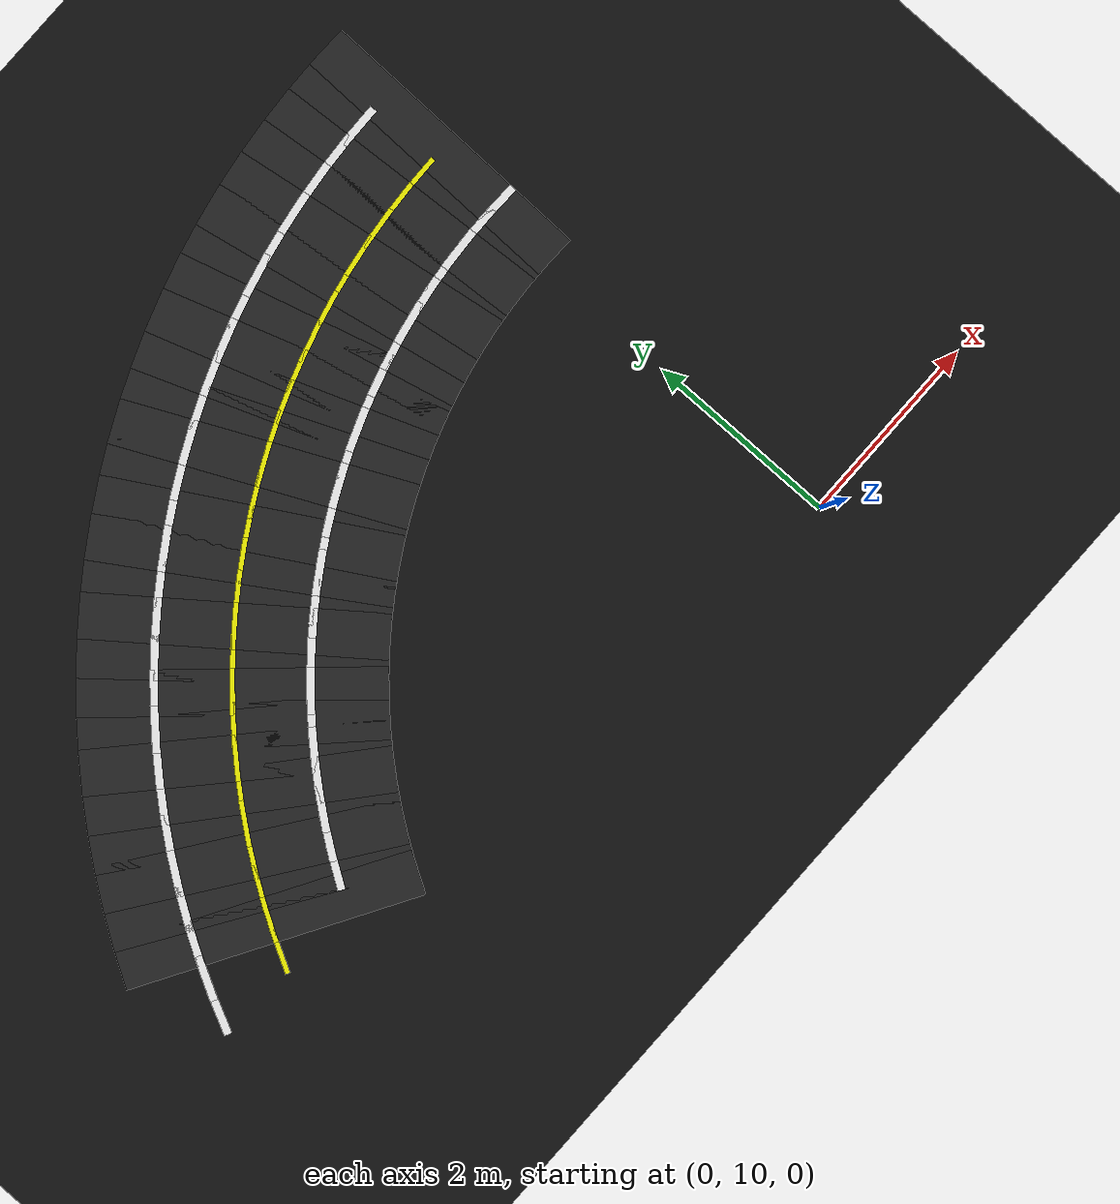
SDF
<sdf version="1.6">
 <world name="figure8_world">
  <model name="ground_plane">
   <static>true</static>
   <link name="link">
    <collision name="collision">
     <geometry><plane><normal>0 0 1</normal><size>100 100</size></plane></geometry>
    </collision>
    <visual name="visual">
     <geometry><plane><normal>0 0 1</normal><size>100 100</size></plane></geometry>
     <material><ambient>0.08 0.08 0.08 1</ambient><diffuse>0.08 0.08 0.08 1</diffuse></material>
    </visual>
   </link>
  </model>
  <model name="seg_00272">
   <static>true</static>
   <pose>0.1581 14.9983 0.0010 0 0 3.1205</pose>
   <link name="link">
    <collision name="collision"><geometry><box><size>0.4500 3.0000 0.002</size></box></geometry></collision>
    <visual name="visual">
     <geometry><box><size>0.4500 3.0000 0.002</size></box></geometry>
     <material><ambient>0.15 0.15 0.15 1</ambient><diffuse>0.15 0.15 0.15 1</diffuse></material>
    </visual>
   </link>
  </model>
  <model name="seg_00274">
   <static>true</static>
   <pose>0.1423 14.2485 0.0030 0 0 3.1205</pose>
   <link name="link">
    <collision name="collision"><geometry><box><size>0.4500 0.0800 0.002</size></box></geometry></collision>
    <visual name="visual">
     <geometry><box><size>0.4500 0.0800 0.002</size></box></geometry>
     <material><ambient>1 1 1 1</ambient><diffuse>1 1 1 1</diffuse></material>
    </visual>
   </link>
  </model>
  <model name="seg_00276">
   <static>true</static>
   <pose>-0.1581 14.9983 0.0010 0 0 3.1627</pose>
   <link name="link">
    <collision name="collision"><geometry><box><size>0.4500 3.0000 0.002</size></box></geometry></collision>
    <visual name="visual">
     <geometry><box><size>0.4500 3.0000 0.002</size></box></geometry>
     <material><ambient>0.15 0.15 0.15 1</ambient><diffuse>0.15 0.15 0.15 1</diffuse></material>
    </visual>
   </link>
  </model>
  <model name="seg_00277">
   <static>true</static>
   <pose>-0.1739 15.7482 0.0030 0 0 3.1627</pose>
   <link name="link">
    <collision name="collision"><geometry><box><size>0.4500 0.0800 0.002</size></box></geometry></collision>
    <visual name="visual">
     <geometry><box><size>0.4500 0.0800 0.002</size></box></geometry>
     <material><ambient>1 1 1 1</ambient><diffuse>1 1 1 1</diffuse></material>
    </visual>
   </link>
  </model>
  <model name="seg_00278">
   <static>true</static>
   <pose>-0.1423 14.2485 0.0030 0 0 3.1627</pose>
   <link name="link">
    <collision name="collision"><geometry><box><size>0.4500 0.0800 0.002</size></box></geometry></collision>
    <visual name="visual">
     <geometry><box><size>0.4500 0.0800 0.002</size></box></geometry>
     <material><ambient>1 1 1 1</ambient><diffuse>1 1 1 1</diffuse></material>
    </visual>
   </link>
  </model>
  <model name="seg_00279">
   <static>true</static>
   <pose>-0.1581 14.9983 0.0030 0 0 3.1627</pose>
   <link name="link">
    <collision name="collision"><geometry><box><size>0.4500 0.0500 0.002</size></box></geometry></collision>
    <visual name="visual">
     <geometry><box><size>0.4500 0.0500 0.002</size></box></geometry>
     <material><ambient>1 1 0 1</ambient><diffuse>1 1 0 1</diffuse></material>
    </visual>
   </link>
  </model>
  <model name="seg_00280">
   <static>true</static>
   <pose>-0.4741 14.9850 0.0010 0 0 3.2048</pose>
   <link name="link">
    <collision name="collision"><geometry><box><size>0.4500 3.0000 0.002</size></box></geometry></collision>
    <visual name="visual">
     <geometry><box><size>0.4500 3.0000 0.002</size></box></geometry>
     <material><ambient>0.15 0.15 0.15 1</ambient><diffuse>0.15 0.15 0.15 1</diffuse></material>
    </visual>
   </link>
  </model>
  <model name="seg_00281">
   <static>true</static>
   <pose>-0.5215 15.7335 0.0030 0 0 3.2048</pose>
   <link name="link">
    <collision name="collision"><geometry><box><size>0.4500 0.0800 0.002</size></box></geometry></collision>
    <visual name="visual">
     <geometry><box><size>0.4500 0.0800 0.002</size></box></geometry>
     <material><ambient>1 1 1 1</ambient><diffuse>1 1 1 1</diffuse></material>
    </visual>
   </link>
  </model>
  <model name="seg_00282">
   <static>true</static>
   <pose>-0.4267 14.2365 0.0030 0 0 3.2048</pose>
   <link name="link">
    <collision name="collision"><geometry><box><size>0.4500 0.0800 0.002</size></box></geometry></collision>
    <visual name="visual">
     <geometry><box><size>0.4500 0.0800 0.002</size></box></geometry>
     <material><ambient>1 1 1 1</ambient><diffuse>1 1 1 1</diffuse></material>
    </visual>
   </link>
  </model>
  <model name="seg_00283">
   <static>true</static>
   <pose>-0.4741 14.9850 0.0030 0 0 3.2048</pose>
   <link name="link">
    <collision name="collision"><geometry><box><size>0.4500 0.0500 0.002</size></box></geometry></collision>
    <visual name="visual">
     <geometry><box><size>0.4500 0.0500 0.002</size></box></geometry>
     <material><ambient>1 1 0 1</ambient><diffuse>1 1 0 1</diffuse></material>
    </visual>
   </link>
  </model>
  <model name="seg_00284">
   <static>true</static>
   <pose>-0.7892 14.9584 0.0010 0 0 3.2470</pose>
   <link name="link">
    <collision name="collision"><geometry><box><size>0.4500 3.0000 0.002</size></box></geometry></collision>
    <visual name="visual">
     <geometry><box><size>0.4500 3.0000 0.002</size></box></geometry>
     <material><ambient>0.15 0.15 0.15 1</ambient><diffuse>0.15 0.15 0.15 1</diffuse></material>
    </visual>
   </link>
  </model>
  <model name="seg_00285">
   <static>true</static>
   <pose>-0.8681 15.7042 0.0030 0 0 3.2470</pose>
   <link name="link">
    <collision name="collision"><geometry><box><size>0.4500 0.0800 0.002</size></box></geometry></collision>
    <visual name="visual">
     <geometry><box><size>0.4500 0.0800 0.002</size></box></geometry>
     <material><ambient>1 1 1 1</ambient><diffuse>1 1 1 1</diffuse></material>
    </visual>
   </link>
  </model>
  <model name="seg_00286">
   <static>true</static>
   <pose>-0.7103 14.2125 0.0030 0 0 3.2470</pose>
   <link name="link">
    <collision name="collision"><geometry><box><size>0.4500 0.0800 0.002</size></box></geometry></collision>
    <visual name="visual">
     <geometry><box><size>0.4500 0.0800 0.002</size></box></geometry>
     <material><ambient>1 1 1 1</ambient><diffuse>1 1 1 1</diffuse></material>
    </visual>
   </link>
  </model>
  <model name="seg_00287">
   <static>true</static>
   <pose>-0.7892 14.9584 0.0030 0 0 3.2470</pose>
   <link name="link">
    <collision name="collision"><geometry><box><size>0.4500 0.0500 0.002</size></box></geometry></collision>
    <visual name="visual">
     <geometry><box><size>0.4500 0.0500 0.002</size></box></geometry>
     <material><ambient>1 1 0 1</ambient><diffuse>1 1 0 1</diffuse></material>
    </visual>
   </link>
  </model>
  <model name="seg_00288">
   <static>true</static>
   <pose>-1.1029 14.9185 0.0010 0 0 3.2892</pose>
   <link name="link">
    <collision name="collision"><geometry><box><size>0.4500 3.0000 0.002</size></box></geometry></collision>
    <visual name="visual">
     <geometry><box><size>0.4500 3.0000 0.002</size></box></geometry>
     <material><ambient>0.15 0.15 0.15 1</ambient><diffuse>0.15 0.15 0.15 1</diffuse></material>
    </visual>
   </link>
  </model>
  <model name="seg_00289">
   <static>true</static>
   <pose>-1.2132 15.6603 0.0030 0 0 3.2892</pose>
   <link name="link">
    <collision name="collision"><geometry><box><size>0.4500 0.0800 0.002</size></box></geometry></collision>
    <visual name="visual">
     <geometry><box><size>0.4500 0.0800 0.002</size></box></geometry>
     <material><ambient>1 1 1 1</ambient><diffuse>1 1 1 1</diffuse></material>
    </visual>
   </link>
  </model>
  <model name="seg_00290">
   <static>true</static>
   <pose>-0.9926 14.1766 0.0030 0 0 3.2892</pose>
   <link name="link">
    <collision name="collision"><geometry><box><size>0.4500 0.0800 0.002</size></box></geometry></collision>
    <visual name="visual">
     <geometry><box><size>0.4500 0.0800 0.002</size></box></geometry>
     <material><ambient>1 1 1 1</ambient><diffuse>1 1 1 1</diffuse></material>
    </visual>
   </link>
  </model>
  <model name="seg_00291">
   <static>true</static>
   <pose>-1.1029 14.9185 0.0030 0 0 3.2892</pose>
   <link name="link">
    <collision name="collision"><geometry><box><size>0.4500 0.0500 0.002</size></box></geometry></collision>
    <visual name="visual">
     <geometry><box><size>0.4500 0.0500 0.002</size></box></geometry>
     <material><ambient>1 1 0 1</ambient><diffuse>1 1 0 1</diffuse></material>
    </visual>
   </link>
  </model>
  <model name="seg_00292">
   <static>true</static>
   <pose>-1.4147 14.8654 0.0010 0 0 3.3314</pose>
   <link name="link">
    <collision name="collision"><geometry><box><size>0.4500 3.0000 0.002</size></box></geometry></collision>
    <visual name="visual">
     <geometry><box><size>0.4500 3.0000 0.002</size></box></geometry>
     <material><ambient>0.15 0.15 0.15 1</ambient><diffuse>0.15 0.15 0.15 1</diffuse></material>
    </visual>
   </link>
  </model>
  <model name="seg_00293">
   <static>true</static>
   <pose>-1.5561 15.6019 0.0030 0 0 3.3314</pose>
   <link name="link">
    <collision name="collision"><geometry><box><size>0.4500 0.0800 0.002</size></box></geometry></collision>
    <visual name="visual">
     <geometry><box><size>0.4500 0.0800 0.002</size></box></geometry>
     <material><ambient>1 1 1 1</ambient><diffuse>1 1 1 1</diffuse></material>
    </visual>
   </link>
  </model>
  <model name="seg_00294">
   <static>true</static>
   <pose>-1.2732 14.1288 0.0030 0 0 3.3314</pose>
   <link name="link">
    <collision name="collision"><geometry><box><size>0.4500 0.0800 0.002</size></box></geometry></collision>
    <visual name="visual">
     <geometry><box><size>0.4500 0.0800 0.002</size></box></geometry>
     <material><ambient>1 1 1 1</ambient><diffuse>1 1 1 1</diffuse></material>
    </visual>
   </link>
  </model>
  <model name="seg_00295">
   <static>true</static>
   <pose>-1.4147 14.8654 0.0030 0 0 3.3314</pose>
   <link name="link">
    <collision name="collision"><geometry><box><size>0.4500 0.0500 0.002</size></box></geometry></collision>
    <visual name="visual">
     <geometry><box><size>0.4500 0.0500 0.002</size></box></geometry>
     <material><ambient>1 1 0 1</ambient><diffuse>1 1 0 1</diffuse></material>
    </visual>
   </link>
  </model>
  <model name="seg_00296">
   <static>true</static>
   <pose>-1.7239 14.7992 0.0010 0 0 3.3735</pose>
   <link name="link">
    <collision name="collision"><geometry><box><size>0.4500 3.0000 0.002</size></box></geometry></collision>
    <visual name="visual">
     <geometry><box><size>0.4500 3.0000 0.002</size></box></geometry>
     <material><ambient>0.15 0.15 0.15 1</ambient><diffuse>0.15 0.15 0.15 1</diffuse></material>
    </visual>
   </link>
  </model>
  <model name="seg_00297">
   <static>true</static>
   <pose>-1.8963 15.5291 0.0030 0 0 3.3735</pose>
   <link name="link">
    <collision name="collision"><geometry><box><size>0.4500 0.0800 0.002</size></box></geometry></collision>
    <visual name="visual">
     <geometry><box><size>0.4500 0.0800 0.002</size></box></geometry>
     <material><ambient>1 1 1 1</ambient><diffuse>1 1 1 1</diffuse></material>
    </visual>
   </link>
  </model>
  <model name="seg_00298">
   <static>true</static>
   <pose>-1.5515 14.0693 0.0030 0 0 3.3735</pose>
   <link name="link">
    <collision name="collision"><geometry><box><size>0.4500 0.0800 0.002</size></box></geometry></collision>
    <visual name="visual">
     <geometry><box><size>0.4500 0.0800 0.002</size></box></geometry>
     <material><ambient>1 1 1 1</ambient><diffuse>1 1 1 1</diffuse></material>
    </visual>
   </link>
  </model>
  <model name="seg_00299">
   <static>true</static>
   <pose>-1.7239 14.7992 0.0030 0 0 3.3735</pose>
   <link name="link">
    <collision name="collision"><geometry><box><size>0.4500 0.0500 0.002</size></box></geometry></collision>
    <visual name="visual">
     <geometry><box><size>0.4500 0.0500 0.002</size></box></geometry>
     <material><ambient>1 1 0 1</ambient><diffuse>1 1 0 1</diffuse></material>
    </visual>
   </link>
  </model>
  <model name="seg_00300">
   <static>true</static>
   <pose>-2.0301 14.7200 0.0010 0 0 3.4157</pose>
   <link name="link">
    <collision name="collision"><geometry><box><size>0.4500 3.0000 0.002</size></box></geometry></collision>
    <visual name="visual">
     <geometry><box><size>0.4500 3.0000 0.002</size></box></geometry>
     <material><ambient>0.15 0.15 0.15 1</ambient><diffuse>0.15 0.15 0.15 1</diffuse></material>
    </visual>
   </link>
  </model>
  <model name="seg_00301">
   <static>true</static>
   <pose>-2.2331 15.4420 0.0030 0 0 3.4157</pose>
   <link name="link">
    <collision name="collision"><geometry><box><size>0.4500 0.0800 0.002</size></box></geometry></collision>
    <visual name="visual">
     <geometry><box><size>0.4500 0.0800 0.002</size></box></geometry>
     <material><ambient>1 1 1 1</ambient><diffuse>1 1 1 1</diffuse></material>
    </visual>
   </link>
  </model>
  <model name="seg_00302">
   <static>true</static>
   <pose>-1.8271 13.9980 0.0030 0 0 3.4157</pose>
   <link name="link">
    <collision name="collision"><geometry><box><size>0.4500 0.0800 0.002</size></box></geometry></collision>
    <visual name="visual">
     <geometry><box><size>0.4500 0.0800 0.002</size></box></geometry>
     <material><ambient>1 1 1 1</ambient><diffuse>1 1 1 1</diffuse></material>
    </visual>
   </link>
  </model>
  <model name="seg_00303">
   <static>true</static>
   <pose>-2.0301 14.7200 0.0030 0 0 3.4157</pose>
   <link name="link">
    <collision name="collision"><geometry><box><size>0.4500 0.0500 0.002</size></box></geometry></collision>
    <visual name="visual">
     <geometry><box><size>0.4500 0.0500 0.002</size></box></geometry>
     <material><ambient>1 1 0 1</ambient><diffuse>1 1 0 1</diffuse></material>
    </visual>
   </link>
  </model>
  <model name="seg_00304">
   <static>true</static>
   <pose>-2.3327 14.6280 0.0010 0 0 3.4579</pose>
   <link name="link">
    <collision name="collision"><geometry><box><size>0.4500 3.0000 0.002</size></box></geometry></collision>
    <visual name="visual">
     <geometry><box><size>0.4500 3.0000 0.002</size></box></geometry>
     <material><ambient>0.15 0.15 0.15 1</ambient><diffuse>0.15 0.15 0.15 1</diffuse></material>
    </visual>
   </link>
  </model>
  <model name="seg_00305">
   <static>true</static>
   <pose>-2.5659 15.3408 0.0030 0 0 3.4579</pose>
   <link name="link">
    <collision name="collision"><geometry><box><size>0.4500 0.0800 0.002</size></box></geometry></collision>
    <visual name="visual">
     <geometry><box><size>0.4500 0.0800 0.002</size></box></geometry>
     <material><ambient>1 1 1 1</ambient><diffuse>1 1 1 1</diffuse></material>
    </visual>
   </link>
  </model>
  <model name="seg_00306">
   <static>true</static>
   <pose>-2.0994 13.9152 0.0030 0 0 3.4579</pose>
   <link name="link">
    <collision name="collision"><geometry><box><size>0.4500 0.0800 0.002</size></box></geometry></collision>
    <visual name="visual">
     <geometry><box><size>0.4500 0.0800 0.002</size></box></geometry>
     <material><ambient>1 1 1 1</ambient><diffuse>1 1 1 1</diffuse></material>
    </visual>
   </link>
  </model>
  <model name="seg_00307">
   <static>true</static>
   <pose>-2.3327 14.6280 0.0030 0 0 3.4579</pose>
   <link name="link">
    <collision name="collision"><geometry><box><size>0.4500 0.0500 0.002</size></box></geometry></collision>
    <visual name="visual">
     <geometry><box><size>0.4500 0.0500 0.002</size></box></geometry>
     <material><ambient>1 1 0 1</ambient><diffuse>1 1 0 1</diffuse></material>
    </visual>
   </link>
  </model>
  <model name="seg_00308">
   <static>true</static>
   <pose>-2.6311 14.5233 0.0010 0 0 3.5000</pose>
   <link name="link">
    <collision name="collision"><geometry><box><size>0.4500 3.0000 0.002</size></box></geometry></collision>
    <visual name="visual">
     <geometry><box><size>0.4500 3.0000 0.002</size></box></geometry>
     <material><ambient>0.15 0.15 0.15 1</ambient><diffuse>0.15 0.15 0.15 1</diffuse></material>
    </visual>
   </link>
  </model>
  <model name="seg_00309">
   <static>true</static>
   <pose>-2.8942 15.2257 0.0030 0 0 3.5000</pose>
   <link name="link">
    <collision name="collision"><geometry><box><size>0.4500 0.0800 0.002</size></box></geometry></collision>
    <visual name="visual">
     <geometry><box><size>0.4500 0.0800 0.002</size></box></geometry>
     <material><ambient>1 1 1 1</ambient><diffuse>1 1 1 1</diffuse></material>
    </visual>
   </link>
  </model>
  <model name="seg_00310">
   <static>true</static>
   <pose>-2.3680 13.8210 0.0030 0 0 3.5000</pose>
   <link name="link">
    <collision name="collision"><geometry><box><size>0.4500 0.0800 0.002</size></box></geometry></collision>
    <visual name="visual">
     <geometry><box><size>0.4500 0.0800 0.002</size></box></geometry>
     <material><ambient>1 1 1 1</ambient><diffuse>1 1 1 1</diffuse></material>
    </visual>
   </link>
  </model>
  <model name="seg_00311">
   <static>true</static>
   <pose>-2.6311 14.5233 0.0030 0 0 3.5000</pose>
   <link name="link">
    <collision name="collision"><geometry><box><size>0.4500 0.0500 0.002</size></box></geometry></collision>
    <visual name="visual">
     <geometry><box><size>0.4500 0.0500 0.002</size></box></geometry>
     <material><ambient>1 1 0 1</ambient><diffuse>1 1 0 1</diffuse></material>
    </visual>
   </link>
  </model>
  <model name="seg_00312">
   <static>true</static>
   <pose>-2.9248 14.4062 0.0010 0 0 3.5422</pose>
   <link name="link">
    <collision name="collision"><geometry><box><size>0.4500 3.0000 0.002</size></box></geometry></collision>
    <visual name="visual">
     <geometry><box><size>0.4500 3.0000 0.002</size></box></geometry>
     <material><ambient>0.15 0.15 0.15 1</ambient><diffuse>0.15 0.15 0.15 1</diffuse></material>
    </visual>
   </link>
  </model>
  <model name="seg_00313">
   <static>true</static>
   <pose>-3.2173 15.0968 0.0030 0 0 3.5422</pose>
   <link name="link">
    <collision name="collision"><geometry><box><size>0.4500 0.0800 0.002</size></box></geometry></collision>
    <visual name="visual">
     <geometry><box><size>0.4500 0.0800 0.002</size></box></geometry>
     <material><ambient>1 1 1 1</ambient><diffuse>1 1 1 1</diffuse></material>
    </visual>
   </link>
  </model>
  <model name="seg_00314">
   <static>true</static>
   <pose>-2.6323 13.7156 0.0030 0 0 3.5422</pose>
   <link name="link">
    <collision name="collision"><geometry><box><size>0.4500 0.0800 0.002</size></box></geometry></collision>
    <visual name="visual">
     <geometry><box><size>0.4500 0.0800 0.002</size></box></geometry>
     <material><ambient>1 1 1 1</ambient><diffuse>1 1 1 1</diffuse></material>
    </visual>
   </link>
  </model>
  <model name="seg_00315">
   <static>true</static>
   <pose>-2.9248 14.4062 0.0030 0 0 3.5422</pose>
   <link name="link">
    <collision name="collision"><geometry><box><size>0.4500 0.0500 0.002</size></box></geometry></collision>
    <visual name="visual">
     <geometry><box><size>0.4500 0.0500 0.002</size></box></geometry>
     <material><ambient>1 1 0 1</ambient><diffuse>1 1 0 1</diffuse></material>
    </visual>
   </link>
  </model>
  <model name="seg_00316">
   <static>true</static>
   <pose>-3.2134 14.2767 0.0010 0 0 3.5844</pose>
   <link name="link">
    <collision name="collision"><geometry><box><size>0.4500 3.0000 0.002</size></box></geometry></collision>
    <visual name="visual">
     <geometry><box><size>0.4500 3.0000 0.002</size></box></geometry>
     <material><ambient>0.15 0.15 0.15 1</ambient><diffuse>0.15 0.15 0.15 1</diffuse></material>
    </visual>
   </link>
  </model>
  <model name="seg_00317">
   <static>true</static>
   <pose>-3.5347 14.9544 0.0030 0 0 3.5844</pose>
   <link name="link">
    <collision name="collision"><geometry><box><size>0.4500 0.0800 0.002</size></box></geometry></collision>
    <visual name="visual">
     <geometry><box><size>0.4500 0.0800 0.002</size></box></geometry>
     <material><ambient>1 1 1 1</ambient><diffuse>1 1 1 1</diffuse></material>
    </visual>
   </link>
  </model>
  <model name="seg_00318">
   <static>true</static>
   <pose>-2.8920 13.5991 0.0030 0 0 3.5844</pose>
   <link name="link">
    <collision name="collision"><geometry><box><size>0.4500 0.0800 0.002</size></box></geometry></collision>
    <visual name="visual">
     <geometry><box><size>0.4500 0.0800 0.002</size></box></geometry>
     <material><ambient>1 1 1 1</ambient><diffuse>1 1 1 1</diffuse></material>
    </visual>
   </link>
  </model>
  <model name="seg_00319">
   <static>true</static>
   <pose>-3.2134 14.2767 0.0030 0 0 3.5844</pose>
   <link name="link">
    <collision name="collision"><geometry><box><size>0.4500 0.0500 0.002</size></box></geometry></collision>
    <visual name="visual">
     <geometry><box><size>0.4500 0.0500 0.002</size></box></geometry>
     <material><ambient>1 1 0 1</ambient><diffuse>1 1 0 1</diffuse></material>
    </visual>
   </link>
  </model>
  <model name="seg_00320">
   <static>true</static>
   <pose>-3.4962 14.1353 0.0010 0 0 3.6265</pose>
   <link name="link">
    <collision name="collision"><geometry><box><size>0.4500 3.0000 0.002</size></box></geometry></collision>
    <visual name="visual">
     <geometry><box><size>0.4500 3.0000 0.002</size></box></geometry>
     <material><ambient>0.15 0.15 0.15 1</ambient><diffuse>0.15 0.15 0.15 1</diffuse></material>
    </visual>
   </link>
  </model>
  <model name="seg_00321">
   <static>true</static>
   <pose>-3.8458 14.7988 0.0030 0 0 3.6265</pose>
   <link name="link">
    <collision name="collision"><geometry><box><size>0.4500 0.0800 0.002</size></box></geometry></collision>
    <visual name="visual">
     <geometry><box><size>0.4500 0.0800 0.002</size></box></geometry>
     <material><ambient>1 1 1 1</ambient><diffuse>1 1 1 1</diffuse></material>
    </visual>
   </link>
  </model>
  <model name="seg_00322">
   <static>true</static>
   <pose>-3.1466 13.4717 0.0030 0 0 3.6265</pose>
   <link name="link">
    <collision name="collision"><geometry><box><size>0.4500 0.0800 0.002</size></box></geometry></collision>
    <visual name="visual">
     <geometry><box><size>0.4500 0.0800 0.002</size></box></geometry>
     <material><ambient>1 1 1 1</ambient><diffuse>1 1 1 1</diffuse></material>
    </visual>
   </link>
  </model>
  <model name="seg_00323">
   <static>true</static>
   <pose>-3.4962 14.1353 0.0030 0 0 3.6265</pose>
   <link name="link">
    <collision name="collision"><geometry><box><size>0.4500 0.0500 0.002</size></box></geometry></collision>
    <visual name="visual">
     <geometry><box><size>0.4500 0.0500 0.002</size></box></geometry>
     <material><ambient>1 1 0 1</ambient><diffuse>1 1 0 1</diffuse></material>
    </visual>
   </link>
  </model>
  <model name="seg_00324">
   <static>true</static>
   <pose>-3.7728 13.9820 0.0010 0 0 3.6687</pose>
   <link name="link">
    <collision name="collision"><geometry><box><size>0.4500 3.0000 0.002</size></box></geometry></collision>
    <visual name="visual">
     <geometry><box><size>0.4500 3.0000 0.002</size></box></geometry>
     <material><ambient>0.15 0.15 0.15 1</ambient><diffuse>0.15 0.15 0.15 1</diffuse></material>
    </visual>
   </link>
  </model>
  <model name="seg_00325">
   <static>true</static>
   <pose>-4.1501 14.6302 0.0030 0 0 3.6687</pose>
   <link name="link">
    <collision name="collision"><geometry><box><size>0.4500 0.0800 0.002</size></box></geometry></collision>
    <visual name="visual">
     <geometry><box><size>0.4500 0.0800 0.002</size></box></geometry>
     <material><ambient>1 1 1 1</ambient><diffuse>1 1 1 1</diffuse></material>
    </visual>
   </link>
  </model>
  <model name="seg_00326">
   <static>true</static>
   <pose>-3.3955 13.3338 0.0030 0 0 3.6687</pose>
   <link name="link">
    <collision name="collision"><geometry><box><size>0.4500 0.0800 0.002</size></box></geometry></collision>
    <visual name="visual">
     <geometry><box><size>0.4500 0.0800 0.002</size></box></geometry>
     <material><ambient>1 1 1 1</ambient><diffuse>1 1 1 1</diffuse></material>
    </visual>
   </link>
  </model>
  <model name="seg_00327">
   <static>true</static>
   <pose>-3.7728 13.9820 0.0030 0 0 3.6687</pose>
   <link name="link">
    <collision name="collision"><geometry><box><size>0.4500 0.0500 0.002</size></box></geometry></collision>
    <visual name="visual">
     <geometry><box><size>0.4500 0.0500 0.002</size></box></geometry>
     <material><ambient>1 1 0 1</ambient><diffuse>1 1 0 1</diffuse></material>
    </visual>
   </link>
  </model>
  <model name="seg_00328">
   <static>true</static>
   <pose>-4.0427 13.8172 0.0010 0 0 3.7109</pose>
   <link name="link">
    <collision name="collision"><geometry><box><size>0.4500 3.0000 0.002</size></box></geometry></collision>
    <visual name="visual">
     <geometry><box><size>0.4500 3.0000 0.002</size></box></geometry>
     <material><ambient>0.15 0.15 0.15 1</ambient><diffuse>0.15 0.15 0.15 1</diffuse></material>
    </visual>
   </link>
  </model>
  <model name="seg_00329">
   <static>true</static>
   <pose>-4.4470 14.4489 0.0030 0 0 3.7109</pose>
   <link name="link">
    <collision name="collision"><geometry><box><size>0.4500 0.0800 0.002</size></box></geometry></collision>
    <visual name="visual">
     <geometry><box><size>0.4500 0.0800 0.002</size></box></geometry>
     <material><ambient>1 1 1 1</ambient><diffuse>1 1 1 1</diffuse></material>
    </visual>
   </link>
  </model>
  <model name="seg_00330">
   <static>true</static>
   <pose>-3.6384 13.1854 0.0030 0 0 3.7109</pose>
   <link name="link">
    <collision name="collision"><geometry><box><size>0.4500 0.0800 0.002</size></box></geometry></collision>
    <visual name="visual">
     <geometry><box><size>0.4500 0.0800 0.002</size></box></geometry>
     <material><ambient>1 1 1 1</ambient><diffuse>1 1 1 1</diffuse></material>
    </visual>
   </link>
  </model>
  <model name="seg_00331">
   <static>true</static>
   <pose>-4.0427 13.8172 0.0030 0 0 3.7109</pose>
   <link name="link">
    <collision name="collision"><geometry><box><size>0.4500 0.0500 0.002</size></box></geometry></collision>
    <visual name="visual">
     <geometry><box><size>0.4500 0.0500 0.002</size></box></geometry>
     <material><ambient>1 1 0 1</ambient><diffuse>1 1 0 1</diffuse></material>
    </visual>
   </link>
  </model>
  <model name="seg_00332">
   <static>true</static>
   <pose>-4.3054 13.6411 0.0010 0 0 3.7530</pose>
   <link name="link">
    <collision name="collision"><geometry><box><size>0.4500 3.0000 0.002</size></box></geometry></collision>
    <visual name="visual">
     <geometry><box><size>0.4500 3.0000 0.002</size></box></geometry>
     <material><ambient>0.15 0.15 0.15 1</ambient><diffuse>0.15 0.15 0.15 1</diffuse></material>
    </visual>
   </link>
  </model>
  <model name="seg_00333">
   <static>true</static>
   <pose>-4.7360 14.2552 0.0030 0 0 3.7530</pose>
   <link name="link">
    <collision name="collision"><geometry><box><size>0.4500 0.0800 0.002</size></box></geometry></collision>
    <visual name="visual">
     <geometry><box><size>0.4500 0.0800 0.002</size></box></geometry>
     <material><ambient>1 1 1 1</ambient><diffuse>1 1 1 1</diffuse></material>
    </visual>
   </link>
  </model>
  <model name="seg_00334">
   <static>true</static>
   <pose>-3.8749 13.0270 0.0030 0 0 3.7530</pose>
   <link name="link">
    <collision name="collision"><geometry><box><size>0.4500 0.0800 0.002</size></box></geometry></collision>
    <visual name="visual">
     <geometry><box><size>0.4500 0.0800 0.002</size></box></geometry>
     <material><ambient>1 1 1 1</ambient><diffuse>1 1 1 1</diffuse></material>
    </visual>
   </link>
  </model>
  <model name="seg_00335">
   <static>true</static>
   <pose>-4.3054 13.6411 0.0030 0 0 3.7530</pose>
   <link name="link">
    <collision name="collision"><geometry><box><size>0.4500 0.0500 0.002</size></box></geometry></collision>
    <visual name="visual">
     <geometry><box><size>0.4500 0.0500 0.002</size></box></geometry>
     <material><ambient>1 1 0 1</ambient><diffuse>1 1 0 1</diffuse></material>
    </visual>
   </link>
  </model>
  <model name="seg_00336">
   <static>true</static>
   <pose>-4.5605 13.4542 0.0010 0 0 3.7952</pose>
   <link name="link">
    <collision name="collision"><geometry><box><size>0.4500 3.0000 0.002</size></box></geometry></collision>
    <visual name="visual">
     <geometry><box><size>0.4500 3.0000 0.002</size></box></geometry>
     <material><ambient>0.15 0.15 0.15 1</ambient><diffuse>0.15 0.15 0.15 1</diffuse></material>
    </visual>
   </link>
  </model>
  <model name="seg_00337">
   <static>true</static>
   <pose>-5.0165 14.0496 0.0030 0 0 3.7952</pose>
   <link name="link">
    <collision name="collision"><geometry><box><size>0.4500 0.0800 0.002</size></box></geometry></collision>
    <visual name="visual">
     <geometry><box><size>0.4500 0.0800 0.002</size></box></geometry>
     <material><ambient>1 1 1 1</ambient><diffuse>1 1 1 1</diffuse></material>
    </visual>
   </link>
  </model>
  <model name="seg_00338">
   <static>true</static>
   <pose>-4.1044 12.8587 0.0030 0 0 3.7952</pose>
   <link name="link">
    <collision name="collision"><geometry><box><size>0.4500 0.0800 0.002</size></box></geometry></collision>
    <visual name="visual">
     <geometry><box><size>0.4500 0.0800 0.002</size></box></geometry>
     <material><ambient>1 1 1 1</ambient><diffuse>1 1 1 1</diffuse></material>
    </visual>
   </link>
  </model>
  <model name="seg_00339">
   <static>true</static>
   <pose>-4.5605 13.4542 0.0030 0 0 3.7952</pose>
   <link name="link">
    <collision name="collision"><geometry><box><size>0.4500 0.0500 0.002</size></box></geometry></collision>
    <visual name="visual">
     <geometry><box><size>0.4500 0.0500 0.002</size></box></geometry>
     <material><ambient>1 1 0 1</ambient><diffuse>1 1 0 1</diffuse></material>
    </visual>
   </link>
  </model>
  <model name="seg_00340">
   <static>true</static>
   <pose>-4.8074 13.2566 0.0010 0 0 3.8374</pose>
   <link name="link">
    <collision name="collision"><geometry><box><size>0.4500 3.0000 0.002</size></box></geometry></collision>
    <visual name="visual">
     <geometry><box><size>0.4500 3.0000 0.002</size></box></geometry>
     <material><ambient>0.15 0.15 0.15 1</ambient><diffuse>0.15 0.15 0.15 1</diffuse></material>
    </visual>
   </link>
  </model>
  <model name="seg_00341">
   <static>true</static>
   <pose>-5.2882 13.8323 0.0030 0 0 3.8374</pose>
   <link name="link">
    <collision name="collision"><geometry><box><size>0.4500 0.0800 0.002</size></box></geometry></collision>
    <visual name="visual">
     <geometry><box><size>0.4500 0.0800 0.002</size></box></geometry>
     <material><ambient>1 1 1 1</ambient><diffuse>1 1 1 1</diffuse></material>
    </visual>
   </link>
  </model>
  <model name="seg_00342">
   <static>true</static>
   <pose>-4.3267 12.6810 0.0030 0 0 3.8374</pose>
   <link name="link">
    <collision name="collision"><geometry><box><size>0.4500 0.0800 0.002</size></box></geometry></collision>
    <visual name="visual">
     <geometry><box><size>0.4500 0.0800 0.002</size></box></geometry>
     <material><ambient>1 1 1 1</ambient><diffuse>1 1 1 1</diffuse></material>
    </visual>
   </link>
  </model>
  <model name="seg_00343">
   <static>true</static>
   <pose>-4.8074 13.2566 0.0030 0 0 3.8374</pose>
   <link name="link">
    <collision name="collision"><geometry><box><size>0.4500 0.0500 0.002</size></box></geometry></collision>
    <visual name="visual">
     <geometry><box><size>0.4500 0.0500 0.002</size></box></geometry>
     <material><ambient>1 1 0 1</ambient><diffuse>1 1 0 1</diffuse></material>
    </visual>
   </link>
  </model>
  <model name="seg_00344">
   <static>true</static>
   <pose>-5.0458 13.0488 0.0010 0 0 3.8796</pose>
   <link name="link">
    <collision name="collision"><geometry><box><size>0.4500 3.0000 0.002</size></box></geometry></collision>
    <visual name="visual">
     <geometry><box><size>0.4500 3.0000 0.002</size></box></geometry>
     <material><ambient>0.15 0.15 0.15 1</ambient><diffuse>0.15 0.15 0.15 1</diffuse></material>
    </visual>
   </link>
  </model>
  <model name="seg_00345">
   <static>true</static>
   <pose>-5.5504 13.6037 0.0030 0 0 3.8796</pose>
   <link name="link">
    <collision name="collision"><geometry><box><size>0.4500 0.0800 0.002</size></box></geometry></collision>
    <visual name="visual">
     <geometry><box><size>0.4500 0.0800 0.002</size></box></geometry>
     <material><ambient>1 1 1 1</ambient><diffuse>1 1 1 1</diffuse></material>
    </visual>
   </link>
  </model>
  <model name="seg_00346">
   <static>true</static>
   <pose>-4.5413 12.4939 0.0030 0 0 3.8796</pose>
   <link name="link">
    <collision name="collision"><geometry><box><size>0.4500 0.0800 0.002</size></box></geometry></collision>
    <visual name="visual">
     <geometry><box><size>0.4500 0.0800 0.002</size></box></geometry>
     <material><ambient>1 1 1 1</ambient><diffuse>1 1 1 1</diffuse></material>
    </visual>
   </link>
  </model>
  <model name="seg_00347">
   <static>true</static>
   <pose>-5.0458 13.0488 0.0030 0 0 3.8796</pose>
   <link name="link">
    <collision name="collision"><geometry><box><size>0.4500 0.0500 0.002</size></box></geometry></collision>
    <visual name="visual">
     <geometry><box><size>0.4500 0.0500 0.002</size></box></geometry>
     <material><ambient>1 1 0 1</ambient><diffuse>1 1 0 1</diffuse></material>
    </visual>
   </link>
  </model>
  <model name="seg_00348">
   <static>true</static>
   <pose>-5.2753 12.8312 0.0010 0 0 3.9217</pose>
   <link name="link">
    <collision name="collision"><geometry><box><size>0.4500 3.0000 0.002</size></box></geometry></collision>
    <visual name="visual">
     <geometry><box><size>0.4500 3.0000 0.002</size></box></geometry>
     <material><ambient>0.15 0.15 0.15 1</ambient><diffuse>0.15 0.15 0.15 1</diffuse></material>
    </visual>
   </link>
  </model>
  <model name="seg_00349">
   <static>true</static>
   <pose>-5.8028 13.3643 0.0030 0 0 3.9217</pose>
   <link name="link">
    <collision name="collision"><geometry><box><size>0.4500 0.0800 0.002</size></box></geometry></collision>
    <visual name="visual">
     <geometry><box><size>0.4500 0.0800 0.002</size></box></geometry>
     <material><ambient>1 1 1 1</ambient><diffuse>1 1 1 1</diffuse></material>
    </visual>
   </link>
  </model>
  <model name="seg_00350">
   <static>true</static>
   <pose>-4.7477 12.2981 0.0030 0 0 3.9217</pose>
   <link name="link">
    <collision name="collision"><geometry><box><size>0.4500 0.0800 0.002</size></box></geometry></collision>
    <visual name="visual">
     <geometry><box><size>0.4500 0.0800 0.002</size></box></geometry>
     <material><ambient>1 1 1 1</ambient><diffuse>1 1 1 1</diffuse></material>
    </visual>
   </link>
  </model>
  <model name="seg_00351">
   <static>true</static>
   <pose>-5.2753 12.8312 0.0030 0 0 3.9217</pose>
   <link name="link">
    <collision name="collision"><geometry><box><size>0.4500 0.0500 0.002</size></box></geometry></collision>
    <visual name="visual">
     <geometry><box><size>0.4500 0.0500 0.002</size></box></geometry>
     <material><ambient>1 1 0 1</ambient><diffuse>1 1 0 1</diffuse></material>
    </visual>
   </link>
  </model>
  <model name="seg_00352">
   <static>true</static>
   <pose>-5.4953 12.6041 0.0010 0 0 3.9639</pose>
   <link name="link">
    <collision name="collision"><geometry><box><size>0.4500 3.0000 0.002</size></box></geometry></collision>
    <visual name="visual">
     <geometry><box><size>0.4500 3.0000 0.002</size></box></geometry>
     <material><ambient>0.15 0.15 0.15 1</ambient><diffuse>0.15 0.15 0.15 1</diffuse></material>
    </visual>
   </link>
  </model>
  <model name="seg_00353">
   <static>true</static>
   <pose>-6.0449 13.1145 0.0030 0 0 3.9639</pose>
   <link name="link">
    <collision name="collision"><geometry><box><size>0.4500 0.0800 0.002</size></box></geometry></collision>
    <visual name="visual">
     <geometry><box><size>0.4500 0.0800 0.002</size></box></geometry>
     <material><ambient>1 1 1 1</ambient><diffuse>1 1 1 1</diffuse></material>
    </visual>
   </link>
  </model>
  <model name="seg_00354">
   <static>true</static>
   <pose>-4.9458 12.0936 0.0030 0 0 3.9639</pose>
   <link name="link">
    <collision name="collision"><geometry><box><size>0.4500 0.0800 0.002</size></box></geometry></collision>
    <visual name="visual">
     <geometry><box><size>0.4500 0.0800 0.002</size></box></geometry>
     <material><ambient>1 1 1 1</ambient><diffuse>1 1 1 1</diffuse></material>
    </visual>
   </link>
  </model>
  <model name="seg_00355">
   <static>true</static>
   <pose>-5.4953 12.6041 0.0030 0 0 3.9639</pose>
   <link name="link">
    <collision name="collision"><geometry><box><size>0.4500 0.0500 0.002</size></box></geometry></collision>
    <visual name="visual">
     <geometry><box><size>0.4500 0.0500 0.002</size></box></geometry>
     <material><ambient>1 1 0 1</ambient><diffuse>1 1 0 1</diffuse></material>
    </visual>
   </link>
  </model>
  <model name="seg_00356">
   <static>true</static>
   <pose>-5.7056 12.3679 0.0010 0 0 4.0061</pose>
   <link name="link">
    <collision name="collision"><geometry><box><size>0.4500 3.0000 0.002</size></box></geometry></collision>
    <visual name="visual">
     <geometry><box><size>0.4500 3.0000 0.002</size></box></geometry>
     <material><ambient>0.15 0.15 0.15 1</ambient><diffuse>0.15 0.15 0.15 1</diffuse></material>
    </visual>
   </link>
  </model>
  <model name="seg_00357">
   <static>true</static>
   <pose>-6.2762 12.8546 0.0030 0 0 4.0061</pose>
   <link name="link">
    <collision name="collision"><geometry><box><size>0.4500 0.0800 0.002</size></box></geometry></collision>
    <visual name="visual">
     <geometry><box><size>0.4500 0.0800 0.002</size></box></geometry>
     <material><ambient>1 1 1 1</ambient><diffuse>1 1 1 1</diffuse></material>
    </visual>
   </link>
  </model>
  <model name="seg_00358">
   <static>true</static>
   <pose>-5.1351 11.8811 0.0030 0 0 4.0061</pose>
   <link name="link">
    <collision name="collision"><geometry><box><size>0.4500 0.0800 0.002</size></box></geometry></collision>
    <visual name="visual">
     <geometry><box><size>0.4500 0.0800 0.002</size></box></geometry>
     <material><ambient>1 1 1 1</ambient><diffuse>1 1 1 1</diffuse></material>
    </visual>
   </link>
  </model>
  <model name="seg_00359">
   <static>true</static>
   <pose>-5.7056 12.3679 0.0030 0 0 4.0061</pose>
   <link name="link">
    <collision name="collision"><geometry><box><size>0.4500 0.0500 0.002</size></box></geometry></collision>
    <visual name="visual">
     <geometry><box><size>0.4500 0.0500 0.002</size></box></geometry>
     <material><ambient>1 1 0 1</ambient><diffuse>1 1 0 1</diffuse></material>
    </visual>
   </link>
  </model>
  <model name="seg_00360">
   <static>true</static>
   <pose>-5.9058 12.1230 0.0010 0 0 4.0482</pose>
   <link name="link">
    <collision name="collision"><geometry><box><size>0.4500 3.0000 0.002</size></box></geometry></collision>
    <visual name="visual">
     <geometry><box><size>0.4500 3.0000 0.002</size></box></geometry>
     <material><ambient>0.15 0.15 0.15 1</ambient><diffuse>0.15 0.15 0.15 1</diffuse></material>
    </visual>
   </link>
  </model>
  <model name="seg_00361">
   <static>true</static>
   <pose>-6.4963 12.5853 0.0030 0 0 4.0482</pose>
   <link name="link">
    <collision name="collision"><geometry><box><size>0.4500 0.0800 0.002</size></box></geometry></collision>
    <visual name="visual">
     <geometry><box><size>0.4500 0.0800 0.002</size></box></geometry>
     <material><ambient>1 1 1 1</ambient><diffuse>1 1 1 1</diffuse></material>
    </visual>
   </link>
  </model>
  <model name="seg_00362">
   <static>true</static>
   <pose>-5.3152 11.6607 0.0030 0 0 4.0482</pose>
   <link name="link">
    <collision name="collision"><geometry><box><size>0.4500 0.0800 0.002</size></box></geometry></collision>
    <visual name="visual">
     <geometry><box><size>0.4500 0.0800 0.002</size></box></geometry>
     <material><ambient>1 1 1 1</ambient><diffuse>1 1 1 1</diffuse></material>
    </visual>
   </link>
  </model>
  <model name="seg_00363">
   <static>true</static>
   <pose>-5.9058 12.1230 0.0030 0 0 4.0482</pose>
   <link name="link">
    <collision name="collision"><geometry><box><size>0.4500 0.0500 0.002</size></box></geometry></collision>
    <visual name="visual">
     <geometry><box><size>0.4500 0.0500 0.002</size></box></geometry>
     <material><ambient>1 1 0 1</ambient><diffuse>1 1 0 1</diffuse></material>
    </visual>
   </link>
  </model>
  <model name="seg_00364">
   <static>true</static>
   <pose>-6.0954 11.8699 0.0010 0 0 4.0904</pose>
   <link name="link">
    <collision name="collision"><geometry><box><size>0.4500 3.0000 0.002</size></box></geometry></collision>
    <visual name="visual">
     <geometry><box><size>0.4500 3.0000 0.002</size></box></geometry>
     <material><ambient>0.15 0.15 0.15 1</ambient><diffuse>0.15 0.15 0.15 1</diffuse></material>
    </visual>
   </link>
  </model>
  <model name="seg_00365">
   <static>true</static>
   <pose>-6.7049 12.3069 0.0030 0 0 4.0904</pose>
   <link name="link">
    <collision name="collision"><geometry><box><size>0.4500 0.0800 0.002</size></box></geometry></collision>
    <visual name="visual">
     <geometry><box><size>0.4500 0.0800 0.002</size></box></geometry>
     <material><ambient>1 1 1 1</ambient><diffuse>1 1 1 1</diffuse></material>
    </visual>
   </link>
  </model>
  <model name="seg_00366">
   <static>true</static>
   <pose>-5.4859 11.4329 0.0030 0 0 4.0904</pose>
   <link name="link">
    <collision name="collision"><geometry><box><size>0.4500 0.0800 0.002</size></box></geometry></collision>
    <visual name="visual">
     <geometry><box><size>0.4500 0.0800 0.002</size></box></geometry>
     <material><ambient>1 1 1 1</ambient><diffuse>1 1 1 1</diffuse></material>
    </visual>
   </link>
  </model>
  <model name="seg_00367">
   <static>true</static>
   <pose>-6.0954 11.8699 0.0030 0 0 4.0904</pose>
   <link name="link">
    <collision name="collision"><geometry><box><size>0.4500 0.0500 0.002</size></box></geometry></collision>
    <visual name="visual">
     <geometry><box><size>0.4500 0.0500 0.002</size></box></geometry>
     <material><ambient>1 1 0 1</ambient><diffuse>1 1 0 1</diffuse></material>
    </visual>
   </link>
  </model>
  <model name="seg_00368">
   <static>true</static>
   <pose>-6.2742 11.6091 0.0010 0 0 4.1326</pose>
   <link name="link">
    <collision name="collision"><geometry><box><size>0.4500 3.0000 0.002</size></box></geometry></collision>
    <visual name="visual">
     <geometry><box><size>0.4500 3.0000 0.002</size></box></geometry>
     <material><ambient>0.15 0.15 0.15 1</ambient><diffuse>0.15 0.15 0.15 1</diffuse></material>
    </visual>
   </link>
  </model>
  <model name="seg_00369">
   <static>true</static>
   <pose>-6.9016 12.0200 0.0030 0 0 4.1326</pose>
   <link name="link">
    <collision name="collision"><geometry><box><size>0.4500 0.0800 0.002</size></box></geometry></collision>
    <visual name="visual">
     <geometry><box><size>0.4500 0.0800 0.002</size></box></geometry>
     <material><ambient>1 1 1 1</ambient><diffuse>1 1 1 1</diffuse></material>
    </visual>
   </link>
  </model>
  <model name="seg_00370">
   <static>true</static>
   <pose>-5.6468 11.1982 0.0030 0 0 4.1326</pose>
   <link name="link">
    <collision name="collision"><geometry><box><size>0.4500 0.0800 0.002</size></box></geometry></collision>
    <visual name="visual">
     <geometry><box><size>0.4500 0.0800 0.002</size></box></geometry>
     <material><ambient>1 1 1 1</ambient><diffuse>1 1 1 1</diffuse></material>
    </visual>
   </link>
  </model>
  <model name="seg_00371">
   <static>true</static>
   <pose>-6.2742 11.6091 0.0030 0 0 4.1326</pose>
   <link name="link">
    <collision name="collision"><geometry><box><size>0.4500 0.0500 0.002</size></box></geometry></collision>
    <visual name="visual">
     <geometry><box><size>0.4500 0.0500 0.002</size></box></geometry>
     <material><ambient>1 1 0 1</ambient><diffuse>1 1 0 1</diffuse></material>
    </visual>
   </link>
  </model>
  <model name="seg_00372">
   <static>true</static>
   <pose>-6.4418 11.3409 0.0010 0 0 4.1747</pose>
   <link name="link">
    <collision name="collision"><geometry><box><size>0.4500 3.0000 0.002</size></box></geometry></collision>
    <visual name="visual">
     <geometry><box><size>0.4500 3.0000 0.002</size></box></geometry>
     <material><ambient>0.15 0.15 0.15 1</ambient><diffuse>0.15 0.15 0.15 1</diffuse></material>
    </visual>
   </link>
  </model>
  <model name="seg_00373">
   <static>true</static>
   <pose>-7.0860 11.7250 0.0030 0 0 4.1747</pose>
   <link name="link">
    <collision name="collision"><geometry><box><size>0.4500 0.0800 0.002</size></box></geometry></collision>
    <visual name="visual">
     <geometry><box><size>0.4500 0.0800 0.002</size></box></geometry>
     <material><ambient>1 1 1 1</ambient><diffuse>1 1 1 1</diffuse></material>
    </visual>
   </link>
  </model>
  <model name="seg_00375">
   <static>true</static>
   <pose>-6.4418 11.3409 0.0030 0 0 4.1747</pose>
   <link name="link">
    <collision name="collision"><geometry><box><size>0.4500 0.0500 0.002</size></box></geometry></collision>
    <visual name="visual">
     <geometry><box><size>0.4500 0.0500 0.002</size></box></geometry>
     <material><ambient>1 1 0 1</ambient><diffuse>1 1 0 1</diffuse></material>
    </visual>
   </link>
  </model>
  <model name="seg_00377">
   <static>true</static>
   <pose>-7.2578 11.4225 0.0030 0 0 4.2169</pose>
   <link name="link">
    <collision name="collision"><geometry><box><size>0.4500 0.0800 0.002</size></box></geometry></collision>
    <visual name="visual">
     <geometry><box><size>0.4500 0.0800 0.002</size></box></geometry>
     <material><ambient>1 1 1 1</ambient><diffuse>1 1 1 1</diffuse></material>
    </visual>
   </link>
  </model>
  <model name="seg_00379">
   <static>true</static>
   <pose>-6.5980 11.0659 0.0030 0 0 4.2169</pose>
   <link name="link">
    <collision name="collision"><geometry><box><size>0.4500 0.0500 0.002</size></box></geometry></collision>
    <visual name="visual">
     <geometry><box><size>0.4500 0.0500 0.002</size></box></geometry>
     <material><ambient>1 1 0 1</ambient><diffuse>1 1 0 1</diffuse></material>
    </visual>
   </link>
  </model>
  <model name="seg_00381">
   <static>true</static>
   <pose>-7.4167 11.1131 0.0030 0 0 4.2591</pose>
   <link name="link">
    <collision name="collision"><geometry><box><size>0.4500 0.0800 0.002</size></box></geometry></collision>
    <visual name="visual">
     <geometry><box><size>0.4500 0.0800 0.002</size></box></geometry>
     <material><ambient>1 1 1 1</ambient><diffuse>1 1 1 1</diffuse></material>
    </visual>
   </link>
  </model>
 </world>
</sdf>
